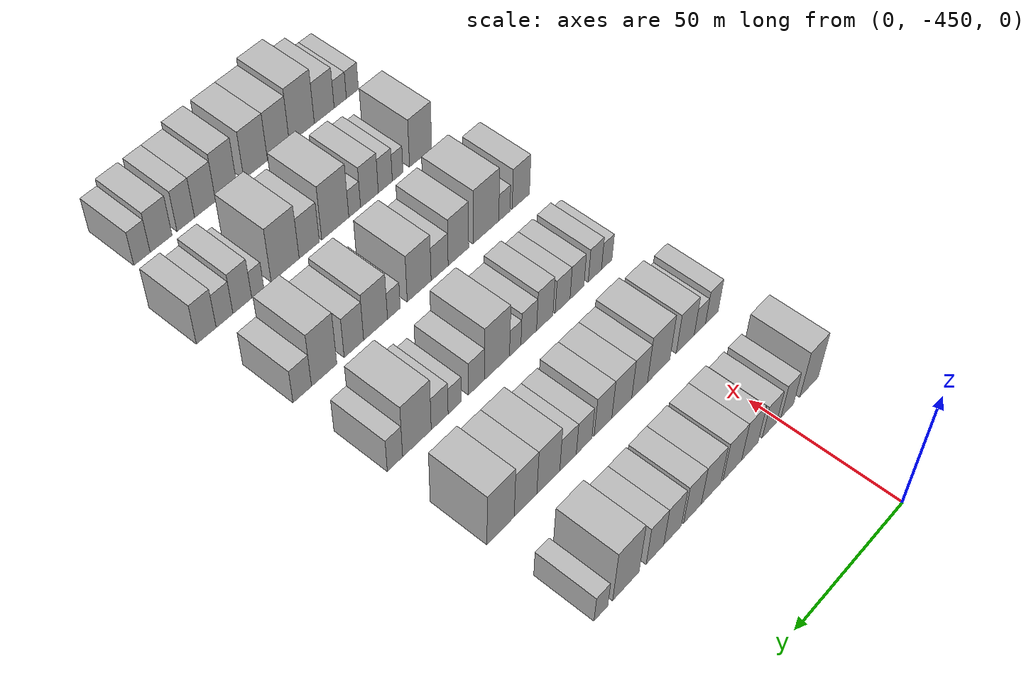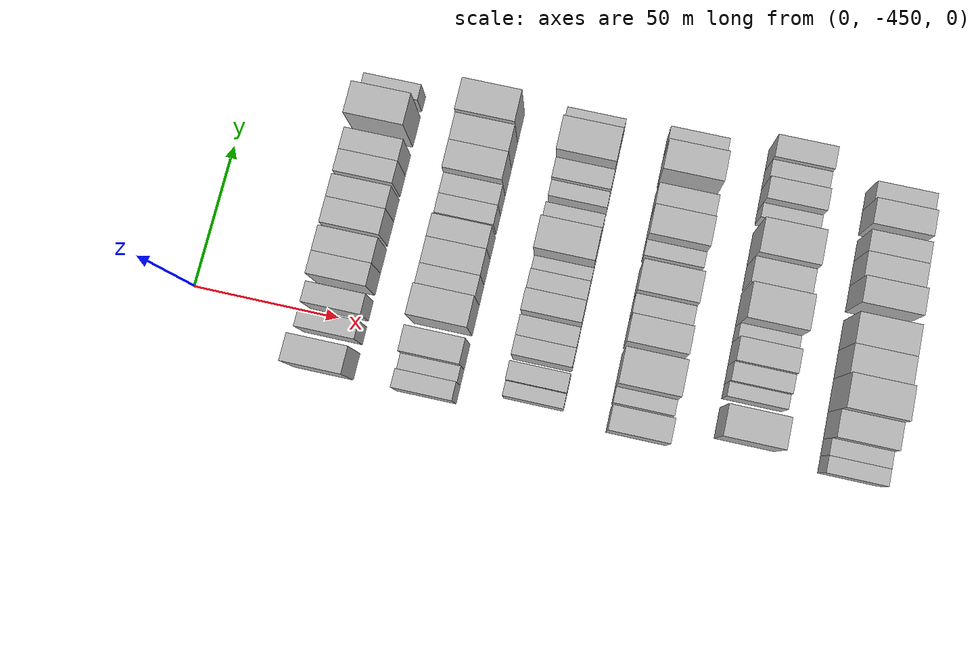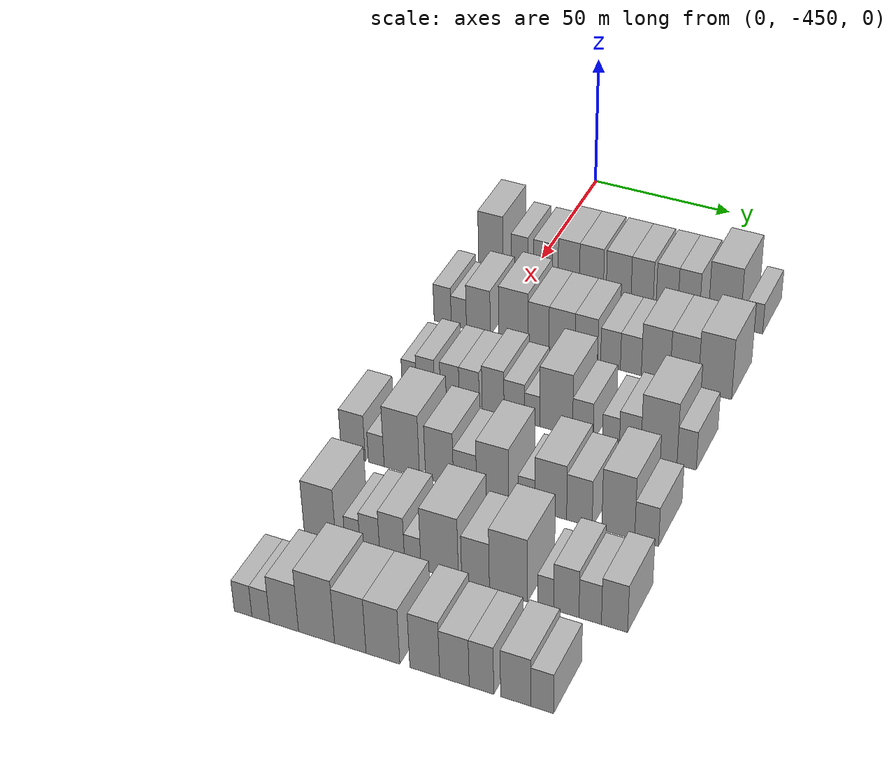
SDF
<sdf version="1.6">
 <world name="default">
  <model name="building_13">
   <static>1</static>
   <pose>50.0000 -464.6407 0 0.000000 0.000000 0.000000</pose>
   <link name="link">
    <pose>0 0 10.50 0 0 0</pose>
    <collision name="collision"><geometry><box><size>20.0000 9.0108 21.0000</size></box></geometry></collision>
    <visual name="visual">
     <cast_shadows>0</cast_shadows>
     <geometry><box><size>20.0000 9.0108 21.0000</size></box></geometry>
     <material>
      <script>
       <uri>model://HANNAS_wall/materials/scripts</uri>
       <uri>model://HANNAS_wall/materials/textures</uri>
       <name>vrc/HANNAS_wall</name>
      </script>
     </material>
    </visual>
   </link>
  </model>
  <model name="building_14">
   <static>1</static>
   <pose>50.0000 -454.0856 0 0.000000 0.000000 0.000000</pose>
   <link name="link">
    <pose>0 0 7.50 0 0 0</pose>
    <collision name="collision"><geometry><box><size>20.0000 6.0993 15.0000</size></box></geometry></collision>
    <visual name="visual">
     <cast_shadows>0</cast_shadows>
     <geometry><box><size>20.0000 6.0993 15.0000</size></box></geometry>
     <material>
      <script>
       <uri>model://HANNAS_wall/materials/scripts</uri>
       <uri>model://HANNAS_wall/materials/textures</uri>
       <name>vrc/HANNAS_wall</name>
      </script>
     </material>
    </visual>
   </link>
  </model>
  <model name="building_15">
   <static>1</static>
   <pose>50.0000 -445.5829 0 0.000000 0.000000 0.000000</pose>
   <link name="link">
    <pose>0 0 7.50 0 0 0</pose>
    <collision name="collision"><geometry><box><size>20.0000 6.9061 15.0000</size></box></geometry></collision>
    <visual name="visual">
     <cast_shadows>0</cast_shadows>
     <geometry><box><size>20.0000 6.9061 15.0000</size></box></geometry>
     <material>
      <script>
       <uri>model://HANNAS_wall/materials/scripts</uri>
       <uri>model://HANNAS_wall/materials/textures</uri>
       <name>vrc/HANNAS_wall</name>
      </script>
     </material>
    </visual>
   </link>
  </model>
  <model name="building_16">
   <static>1</static>
   <pose>50.0000 -436.2913 0 0.000000 0.000000 0.000000</pose>
   <link name="link">
    <pose>0 0 9.00 0 0 0</pose>
    <collision name="collision"><geometry><box><size>20.0000 7.6771 18.0000</size></box></geometry></collision>
    <visual name="visual">
     <cast_shadows>0</cast_shadows>
     <geometry><box><size>20.0000 7.6771 18.0000</size></box></geometry>
     <material>
      <script>
       <uri>model://HANNAS_wall/materials/scripts</uri>
       <uri>model://HANNAS_wall/materials/textures</uri>
       <name>vrc/HANNAS_wall</name>
      </script>
     </material>
    </visual>
   </link>
  </model>
  <model name="building_17">
   <static>1</static>
   <pose>50.0000 -428.1768 0 0.000000 0.000000 0.000000</pose>
   <link name="link">
    <pose>0 0 9.00 0 0 0</pose>
    <collision name="collision"><geometry><box><size>20.0000 8.5519 18.0000</size></box></geometry></collision>
    <visual name="visual">
     <cast_shadows>0</cast_shadows>
     <geometry><box><size>20.0000 8.5519 18.0000</size></box></geometry>
     <material>
      <script>
       <uri>model://HANNAS_wall/materials/scripts</uri>
       <uri>model://HANNAS_wall/materials/textures</uri>
       <name>vrc/HANNAS_wall</name>
      </script>
     </material>
    </visual>
   </link>
  </model>
  <model name="building_18">
   <static>1</static>
   <pose>50.0000 -418.5068 0 0.000000 0.000000 0.000000</pose>
   <link name="link">
    <pose>0 0 9.00 0 0 0</pose>
    <collision name="collision"><geometry><box><size>20.0000 8.7880 18.0000</size></box></geometry></collision>
    <visual name="visual">
     <cast_shadows>0</cast_shadows>
     <geometry><box><size>20.0000 8.7880 18.0000</size></box></geometry>
     <material>
      <script>
       <uri>model://HANNAS_wall/materials/scripts</uri>
       <uri>model://HANNAS_wall/materials/textures</uri>
       <name>vrc/HANNAS_wall</name>
      </script>
     </material>
    </visual>
   </link>
  </model>
  <model name="building_19">
   <static>1</static>
   <pose>50.0000 -410.2120 0 0.000000 0.000000 0.000000</pose>
   <link name="link">
    <pose>0 0 9.00 0 0 0</pose>
    <collision name="collision"><geometry><box><size>20.0000 7.8017 18.0000</size></box></geometry></collision>
    <visual name="visual">
     <cast_shadows>0</cast_shadows>
     <geometry><box><size>20.0000 7.8017 18.0000</size></box></geometry>
     <material>
      <script>
       <uri>model://HANNAS_wall/materials/scripts</uri>
       <uri>model://HANNAS_wall/materials/textures</uri>
       <name>vrc/HANNAS_wall</name>
      </script>
     </material>
    </visual>
   </link>
  </model>
  <model name="building_20">
   <static>1</static>
   <pose>50.0000 -401.4914 0 0.000000 0.000000 0.000000</pose>
   <link name="link">
    <pose>0 0 9.00 0 0 0</pose>
    <collision name="collision"><geometry><box><size>20.0000 7.6396 18.0000</size></box></geometry></collision>
    <visual name="visual">
     <cast_shadows>0</cast_shadows>
     <geometry><box><size>20.0000 7.6396 18.0000</size></box></geometry>
     <material>
      <script>
       <uri>model://HANNAS_wall/materials/scripts</uri>
       <uri>model://HANNAS_wall/materials/textures</uri>
       <name>vrc/HANNAS_wall</name>
      </script>
     </material>
    </visual>
   </link>
  </model>
  <model name="building_21">
   <static>1</static>
   <pose>50.0000 -393.9157 0 0.000000 0.000000 0.000000</pose>
   <link name="link">
    <pose>0 0 9.00 0 0 0</pose>
    <collision name="collision"><geometry><box><size>20.0000 7.5118 18.0000</size></box></geometry></collision>
    <visual name="visual">
     <cast_shadows>0</cast_shadows>
     <geometry><box><size>20.0000 7.5118 18.0000</size></box></geometry>
     <material>
      <script>
       <uri>model://HANNAS_wall/materials/scripts</uri>
       <uri>model://HANNAS_wall/materials/textures</uri>
       <name>vrc/HANNAS_wall</name>
      </script>
     </material>
    </visual>
   </link>
  </model>
  <model name="building_22">
   <static>1</static>
   <pose>50.0000 -381.6460 0 0.000000 0.000000 0.000000</pose>
   <link name="link">
    <pose>0 0 12.00 0 0 0</pose>
    <collision name="collision"><geometry><box><size>20.0000 11.0276 24.0000</size></box></geometry></collision>
    <visual name="visual">
     <cast_shadows>0</cast_shadows>
     <geometry><box><size>20.0000 11.0276 24.0000</size></box></geometry>
     <material>
      <script>
       <uri>model://HANNAS_wall/materials/scripts</uri>
       <uri>model://HANNAS_wall/materials/textures</uri>
       <name>vrc/HANNAS_wall</name>
      </script>
     </material>
    </visual>
   </link>
  </model>
  <model name="building_23">
   <static>1</static>
   <pose>50.0000 -371.3192 0 0.000000 0.000000 0.000000</pose>
   <link name="link">
    <pose>0 0 6.00 0 0 0</pose>
    <collision name="collision"><geometry><box><size>20.0000 5.6260 12.0000</size></box></geometry></collision>
    <visual name="visual">
     <cast_shadows>0</cast_shadows>
     <geometry><box><size>20.0000 5.6260 12.0000</size></box></geometry>
     <material>
      <script>
       <uri>model://HANNAS_wall/materials/scripts</uri>
       <uri>model://HANNAS_wall/materials/textures</uri>
       <name>vrc/HANNAS_wall</name>
      </script>
     </material>
    </visual>
   </link>
  </model>
  <model name="building_141">
   <static>1</static>
   <pose>85.0000 -466.4260 0 0.000000 0.000000 0.000000</pose>
   <link name="link">
    <pose>0 0 7.50 0 0 0</pose>
    <collision name="collision"><geometry><box><size>20.0000 6.1552 15.0000</size></box></geometry></collision>
    <visual name="visual">
     <cast_shadows>0</cast_shadows>
     <geometry><box><size>20.0000 6.1552 15.0000</size></box></geometry>
     <material>
      <script>
       <uri>model://HANNAS_wall/materials/scripts</uri>
       <uri>model://HANNAS_wall/materials/textures</uri>
       <name>vrc/HANNAS_wall</name>
      </script>
     </material>
    </visual>
   </link>
  </model>
  <model name="building_142">
   <static>1</static>
   <pose>85.0000 -460.6485 0 0.000000 0.000000 0.000000</pose>
   <link name="link">
    <pose>0 0 6.00 0 0 0</pose>
    <collision name="collision"><geometry><box><size>20.0000 5.3996 12.0000</size></box></geometry></collision>
    <visual name="visual">
     <cast_shadows>0</cast_shadows>
     <geometry><box><size>20.0000 5.3996 12.0000</size></box></geometry>
     <material>
      <script>
       <uri>model://HANNAS_wall/materials/scripts</uri>
       <uri>model://HANNAS_wall/materials/textures</uri>
       <name>vrc/HANNAS_wall</name>
      </script>
     </material>
    </visual>
   </link>
  </model>
  <model name="building_143">
   <static>1</static>
   <pose>85.0000 -453.7010 0 0.000000 0.000000 0.000000</pose>
   <link name="link">
    <pose>0 0 9.00 0 0 0</pose>
    <collision name="collision"><geometry><box><size>20.0000 8.4955 18.0000</size></box></geometry></collision>
    <visual name="visual">
     <cast_shadows>0</cast_shadows>
     <geometry><box><size>20.0000 8.4955 18.0000</size></box></geometry>
     <material>
      <script>
       <uri>model://HANNAS_wall/materials/scripts</uri>
       <uri>model://HANNAS_wall/materials/textures</uri>
       <name>vrc/HANNAS_wall</name>
      </script>
     </material>
    </visual>
   </link>
  </model>
  <model name="building_144">
   <static>1</static>
   <pose>85.0000 -441.2872 0 0.000000 0.000000 0.000000</pose>
   <link name="link">
    <pose>0 0 10.50 0 0 0</pose>
    <collision name="collision"><geometry><box><size>20.0000 10.3321 21.0000</size></box></geometry></collision>
    <visual name="visual">
     <cast_shadows>0</cast_shadows>
     <geometry><box><size>20.0000 10.3321 21.0000</size></box></geometry>
     <material>
      <script>
       <uri>model://HANNAS_wall/materials/scripts</uri>
       <uri>model://HANNAS_wall/materials/textures</uri>
       <name>vrc/HANNAS_wall</name>
      </script>
     </material>
    </visual>
   </link>
  </model>
  <model name="building_145">
   <static>1</static>
   <pose>85.0000 -432.5158 0 0.000000 0.000000 0.000000</pose>
   <link name="link">
    <pose>0 0 9.00 0 0 0</pose>
    <collision name="collision"><geometry><box><size>20.0000 7.2106 18.0000</size></box></geometry></collision>
    <visual name="visual">
     <cast_shadows>0</cast_shadows>
     <geometry><box><size>20.0000 7.2106 18.0000</size></box></geometry>
     <material>
      <script>
       <uri>model://HANNAS_wall/materials/scripts</uri>
       <uri>model://HANNAS_wall/materials/textures</uri>
       <name>vrc/HANNAS_wall</name>
      </script>
     </material>
    </visual>
   </link>
  </model>
  <model name="building_146">
   <static>1</static>
   <pose>85.0000 -424.4501 0 0.000000 0.000000 0.000000</pose>
   <link name="link">
    <pose>0 0 9.00 0 0 0</pose>
    <collision name="collision"><geometry><box><size>20.0000 8.9210 18.0000</size></box></geometry></collision>
    <visual name="visual">
     <cast_shadows>0</cast_shadows>
     <geometry><box><size>20.0000 8.9210 18.0000</size></box></geometry>
     <material>
      <script>
       <uri>model://HANNAS_wall/materials/scripts</uri>
       <uri>model://HANNAS_wall/materials/textures</uri>
       <name>vrc/HANNAS_wall</name>
      </script>
     </material>
    </visual>
   </link>
  </model>
  <model name="building_147">
   <static>1</static>
   <pose>85.0000 -416.0861 0 0.000000 0.000000 0.000000</pose>
   <link name="link">
    <pose>0 0 9.00 0 0 0</pose>
    <collision name="collision"><geometry><box><size>20.0000 7.8068 18.0000</size></box></geometry></collision>
    <visual name="visual">
     <cast_shadows>0</cast_shadows>
     <geometry><box><size>20.0000 7.8068 18.0000</size></box></geometry>
     <material>
      <script>
       <uri>model://HANNAS_wall/materials/scripts</uri>
       <uri>model://HANNAS_wall/materials/textures</uri>
       <name>vrc/HANNAS_wall</name>
      </script>
     </material>
    </visual>
   </link>
  </model>
  <model name="building_148">
   <static>1</static>
   <pose>85.0000 -407.8089 0 0.000000 0.000000 0.000000</pose>
   <link name="link">
    <pose>0 0 7.50 0 0 0</pose>
    <collision name="collision"><geometry><box><size>20.0000 6.7477 15.0000</size></box></geometry></collision>
    <visual name="visual">
     <cast_shadows>0</cast_shadows>
     <geometry><box><size>20.0000 6.7477 15.0000</size></box></geometry>
     <material>
      <script>
       <uri>model://HANNAS_wall/materials/scripts</uri>
       <uri>model://HANNAS_wall/materials/textures</uri>
       <name>vrc/HANNAS_wall</name>
      </script>
     </material>
    </visual>
   </link>
  </model>
  <model name="building_149">
   <static>1</static>
   <pose>85.0000 -400.8885 0 0.000000 0.000000 0.000000</pose>
   <link name="link">
    <pose>0 0 7.50 0 0 0</pose>
    <collision name="collision"><geometry><box><size>20.0000 7.0931 15.0000</size></box></geometry></collision>
    <visual name="visual">
     <cast_shadows>0</cast_shadows>
     <geometry><box><size>20.0000 7.0931 15.0000</size></box></geometry>
     <material>
      <script>
       <uri>model://HANNAS_wall/materials/scripts</uri>
       <uri>model://HANNAS_wall/materials/textures</uri>
       <name>vrc/HANNAS_wall</name>
      </script>
     </material>
    </visual>
   </link>
  </model>
  <model name="building_150">
   <static>1</static>
   <pose>85.0000 -392.5144 0 0.000000 0.000000 0.000000</pose>
   <link name="link">
    <pose>0 0 10.50 0 0 0</pose>
    <collision name="collision"><geometry><box><size>20.0000 9.6550 21.0000</size></box></geometry></collision>
    <visual name="visual">
     <cast_shadows>0</cast_shadows>
     <geometry><box><size>20.0000 9.6550 21.0000</size></box></geometry>
     <material>
      <script>
       <uri>model://HANNAS_wall/materials/scripts</uri>
       <uri>model://HANNAS_wall/materials/textures</uri>
       <name>vrc/HANNAS_wall</name>
      </script>
     </material>
    </visual>
   </link>
  </model>
  <model name="building_151">
   <static>1</static>
   <pose>85.0000 -383.0103 0 0.000000 0.000000 0.000000</pose>
   <link name="link">
    <pose>0 0 10.50 0 0 0</pose>
    <collision name="collision"><geometry><box><size>20.0000 9.3533 21.0000</size></box></geometry></collision>
    <visual name="visual">
     <cast_shadows>0</cast_shadows>
     <geometry><box><size>20.0000 9.3533 21.0000</size></box></geometry>
     <material>
      <script>
       <uri>model://HANNAS_wall/materials/scripts</uri>
       <uri>model://HANNAS_wall/materials/textures</uri>
       <name>vrc/HANNAS_wall</name>
      </script>
     </material>
    </visual>
   </link>
  </model>
  <model name="building_152">
   <static>1</static>
   <pose>85.0000 -372.8003 0 0.000000 0.000000 0.000000</pose>
   <link name="link">
    <pose>0 0 12.00 0 0 0</pose>
    <collision name="collision"><geometry><box><size>20.0000 11.0667 24.0000</size></box></geometry></collision>
    <visual name="visual">
     <cast_shadows>0</cast_shadows>
     <geometry><box><size>20.0000 11.0667 24.0000</size></box></geometry>
     <material>
      <script>
       <uri>model://HANNAS_wall/materials/scripts</uri>
       <uri>model://HANNAS_wall/materials/textures</uri>
       <name>vrc/HANNAS_wall</name>
      </script>
     </material>
    </visual>
   </link>
  </model>
  <model name="building_268">
   <static>1</static>
   <pose>120.0000 -461.7917 0 0.000000 0.000000 0.000000</pose>
   <link name="link">
    <pose>0 0 6.00 0 0 0</pose>
    <collision name="collision"><geometry><box><size>20.0000 4.9684 12.0000</size></box></geometry></collision>
    <visual name="visual">
     <cast_shadows>0</cast_shadows>
     <geometry><box><size>20.0000 4.9684 12.0000</size></box></geometry>
     <material>
      <script>
       <uri>model://HANNAS_wall/materials/scripts</uri>
       <uri>model://HANNAS_wall/materials/textures</uri>
       <name>vrc/HANNAS_wall</name>
      </script>
     </material>
    </visual>
   </link>
  </model>
  <model name="building_269">
   <static>1</static>
   <pose>120.0000 -456.1855 0 0.000000 0.000000 0.000000</pose>
   <link name="link">
    <pose>0 0 7.50 0 0 0</pose>
    <collision name="collision"><geometry><box><size>20.0000 6.2441 15.0000</size></box></geometry></collision>
    <visual name="visual">
     <cast_shadows>0</cast_shadows>
     <geometry><box><size>20.0000 6.2441 15.0000</size></box></geometry>
     <material>
      <script>
       <uri>model://HANNAS_wall/materials/scripts</uri>
       <uri>model://HANNAS_wall/materials/textures</uri>
       <name>vrc/HANNAS_wall</name>
      </script>
     </material>
    </visual>
   </link>
  </model>
  <model name="building_270">
   <static>1</static>
   <pose>120.0000 -447.8540 0 0.000000 0.000000 0.000000</pose>
   <link name="link">
    <pose>0 0 7.50 0 0 0</pose>
    <collision name="collision"><geometry><box><size>20.0000 6.4188 15.0000</size></box></geometry></collision>
    <visual name="visual">
     <cast_shadows>0</cast_shadows>
     <geometry><box><size>20.0000 6.4188 15.0000</size></box></geometry>
     <material>
      <script>
       <uri>model://HANNAS_wall/materials/scripts</uri>
       <uri>model://HANNAS_wall/materials/textures</uri>
       <name>vrc/HANNAS_wall</name>
      </script>
     </material>
    </visual>
   </link>
  </model>
  <model name="building_271">
   <static>1</static>
   <pose>120.0000 -441.2460 0 0.000000 0.000000 0.000000</pose>
   <link name="link">
    <pose>0 0 7.50 0 0 0</pose>
    <collision name="collision"><geometry><box><size>20.0000 6.7972 15.0000</size></box></geometry></collision>
    <visual name="visual">
     <cast_shadows>0</cast_shadows>
     <geometry><box><size>20.0000 6.7972 15.0000</size></box></geometry>
     <material>
      <script>
       <uri>model://HANNAS_wall/materials/scripts</uri>
       <uri>model://HANNAS_wall/materials/textures</uri>
       <name>vrc/HANNAS_wall</name>
      </script>
     </material>
    </visual>
   </link>
  </model>
  <model name="building_272">
   <static>1</static>
   <pose>120.0000 -433.1533 0 0.000000 0.000000 0.000000</pose>
   <link name="link">
    <pose>0 0 9.00 0 0 0</pose>
    <collision name="collision"><geometry><box><size>20.0000 7.3883 18.0000</size></box></geometry></collision>
    <visual name="visual">
     <cast_shadows>0</cast_shadows>
     <geometry><box><size>20.0000 7.3883 18.0000</size></box></geometry>
     <material>
      <script>
       <uri>model://HANNAS_wall/materials/scripts</uri>
       <uri>model://HANNAS_wall/materials/textures</uri>
       <name>vrc/HANNAS_wall</name>
      </script>
     </material>
    </visual>
   </link>
  </model>
  <model name="building_273">
   <static>1</static>
   <pose>120.0000 -425.9911 0 0.000000 0.000000 0.000000</pose>
   <link name="link">
    <pose>0 0 7.50 0 0 0</pose>
    <collision name="collision"><geometry><box><size>20.0000 6.9361 15.0000</size></box></geometry></collision>
    <visual name="visual">
     <cast_shadows>0</cast_shadows>
     <geometry><box><size>20.0000 6.9361 15.0000</size></box></geometry>
     <material>
      <script>
       <uri>model://HANNAS_wall/materials/scripts</uri>
       <uri>model://HANNAS_wall/materials/textures</uri>
       <name>vrc/HANNAS_wall</name>
      </script>
     </material>
    </visual>
   </link>
  </model>
  <model name="building_274">
   <static>1</static>
   <pose>120.0000 -420.0111 0 0.000000 0.000000 0.000000</pose>
   <link name="link">
    <pose>0 0 6.00 0 0 0</pose>
    <collision name="collision"><geometry><box><size>20.0000 5.0239 12.0000</size></box></geometry></collision>
    <visual name="visual">
     <cast_shadows>0</cast_shadows>
     <geometry><box><size>20.0000 5.0239 12.0000</size></box></geometry>
     <material>
      <script>
       <uri>model://HANNAS_wall/materials/scripts</uri>
       <uri>model://HANNAS_wall/materials/textures</uri>
       <name>vrc/HANNAS_wall</name>
      </script>
     </material>
    </visual>
   </link>
  </model>
  <model name="building_275">
   <static>1</static>
   <pose>120.0000 -412.0723 0 0.000000 0.000000 0.000000</pose>
   <link name="link">
    <pose>0 0 12.00 0 0 0</pose>
    <collision name="collision"><geometry><box><size>20.0000 10.8537 24.0000</size></box></geometry></collision>
    <visual name="visual">
     <cast_shadows>0</cast_shadows>
     <geometry><box><size>20.0000 10.8537 24.0000</size></box></geometry>
     <material>
      <script>
       <uri>model://HANNAS_wall/materials/scripts</uri>
       <uri>model://HANNAS_wall/materials/textures</uri>
       <name>vrc/HANNAS_wall</name>
      </script>
     </material>
    </visual>
   </link>
  </model>
  <model name="building_276">
   <static>1</static>
   <pose>120.0000 -403.2533 0 0.000000 0.000000 0.000000</pose>
   <link name="link">
    <pose>0 0 7.50 0 0 0</pose>
    <collision name="collision"><geometry><box><size>20.0000 6.7842 15.0000</size></box></geometry></collision>
    <visual name="visual">
     <cast_shadows>0</cast_shadows>
     <geometry><box><size>20.0000 6.7842 15.0000</size></box></geometry>
     <material>
      <script>
       <uri>model://HANNAS_wall/materials/scripts</uri>
       <uri>model://HANNAS_wall/materials/textures</uri>
       <name>vrc/HANNAS_wall</name>
      </script>
     </material>
    </visual>
   </link>
  </model>
  <model name="building_277">
   <static>1</static>
   <pose>120.0000 -394.0921 0 0.000000 0.000000 0.000000</pose>
   <link name="link">
    <pose>0 0 6.00 0 0 0</pose>
    <collision name="collision"><geometry><box><size>20.0000 5.5382 12.0000</size></box></geometry></collision>
    <visual name="visual">
     <cast_shadows>0</cast_shadows>
     <geometry><box><size>20.0000 5.5382 12.0000</size></box></geometry>
     <material>
      <script>
       <uri>model://HANNAS_wall/materials/scripts</uri>
       <uri>model://HANNAS_wall/materials/textures</uri>
       <name>vrc/HANNAS_wall</name>
      </script>
     </material>
    </visual>
   </link>
  </model>
  <model name="building_278">
   <static>1</static>
   <pose>120.0000 -387.8358 0 0.000000 0.000000 0.000000</pose>
   <link name="link">
    <pose>0 0 7.50 0 0 0</pose>
    <collision name="collision"><geometry><box><size>20.0000 6.9743 15.0000</size></box></geometry></collision>
    <visual name="visual">
     <cast_shadows>0</cast_shadows>
     <geometry><box><size>20.0000 6.9743 15.0000</size></box></geometry>
     <material>
      <script>
       <uri>model://HANNAS_wall/materials/scripts</uri>
       <uri>model://HANNAS_wall/materials/textures</uri>
       <name>vrc/HANNAS_wall</name>
      </script>
     </material>
    </visual>
   </link>
  </model>
  <model name="building_279">
   <static>1</static>
   <pose>120.0000 -378.5431 0 0.000000 0.000000 0.000000</pose>
   <link name="link">
    <pose>0 0 12.00 0 0 0</pose>
    <collision name="collision"><geometry><box><size>20.0000 11.6112 24.0000</size></box></geometry></collision>
    <visual name="visual">
     <cast_shadows>0</cast_shadows>
     <geometry><box><size>20.0000 11.6112 24.0000</size></box></geometry>
     <material>
      <script>
       <uri>model://HANNAS_wall/materials/scripts</uri>
       <uri>model://HANNAS_wall/materials/textures</uri>
       <name>vrc/HANNAS_wall</name>
      </script>
     </material>
    </visual>
   </link>
  </model>
  <model name="building_280">
   <static>1</static>
   <pose>120.0000 -369.6702 0 0.000000 0.000000 0.000000</pose>
   <link name="link">
    <pose>0 0 7.50 0 0 0</pose>
    <collision name="collision"><geometry><box><size>20.0000 6.1345 15.0000</size></box></geometry></collision>
    <visual name="visual">
     <cast_shadows>0</cast_shadows>
     <geometry><box><size>20.0000 6.1345 15.0000</size></box></geometry>
     <material>
      <script>
       <uri>model://HANNAS_wall/materials/scripts</uri>
       <uri>model://HANNAS_wall/materials/textures</uri>
       <name>vrc/HANNAS_wall</name>
      </script>
     </material>
    </visual>
   </link>
  </model>
  <model name="building_394">
   <static>1</static>
   <pose>155.0000 -463.9140 0 0.000000 0.000000 0.000000</pose>
   <link name="link">
    <pose>0 0 9.00 0 0 0</pose>
    <collision name="collision"><geometry><box><size>20.0000 8.1123 18.0000</size></box></geometry></collision>
    <visual name="visual">
     <cast_shadows>0</cast_shadows>
     <geometry><box><size>20.0000 8.1123 18.0000</size></box></geometry>
     <material>
      <script>
       <uri>model://HANNAS_wall/materials/scripts</uri>
       <uri>model://HANNAS_wall/materials/textures</uri>
       <name>vrc/HANNAS_wall</name>
      </script>
     </material>
    </visual>
   </link>
  </model>
  <model name="building_395">
   <static>1</static>
   <pose>155.0000 -456.2298 0 0.000000 0.000000 0.000000</pose>
   <link name="link">
    <pose>0 0 6.00 0 0 0</pose>
    <collision name="collision"><geometry><box><size>20.0000 5.2563 12.0000</size></box></geometry></collision>
    <visual name="visual">
     <cast_shadows>0</cast_shadows>
     <geometry><box><size>20.0000 5.2563 12.0000</size></box></geometry>
     <material>
      <script>
       <uri>model://HANNAS_wall/materials/scripts</uri>
       <uri>model://HANNAS_wall/materials/textures</uri>
       <name>vrc/HANNAS_wall</name>
      </script>
     </material>
    </visual>
   </link>
  </model>
  <model name="building_396">
   <static>1</static>
   <pose>155.0000 -447.7256 0 0.000000 0.000000 0.000000</pose>
   <link name="link">
    <pose>0 0 12.00 0 0 0</pose>
    <collision name="collision"><geometry><box><size>20.0000 11.7521 24.0000</size></box></geometry></collision>
    <visual name="visual">
     <cast_shadows>0</cast_shadows>
     <geometry><box><size>20.0000 11.7521 24.0000</size></box></geometry>
     <material>
      <script>
       <uri>model://HANNAS_wall/materials/scripts</uri>
       <uri>model://HANNAS_wall/materials/textures</uri>
       <name>vrc/HANNAS_wall</name>
      </script>
     </material>
    </visual>
   </link>
  </model>
  <model name="building_397">
   <static>1</static>
   <pose>155.0000 -435.2568 0 0.000000 0.000000 0.000000</pose>
   <link name="link">
    <pose>0 0 10.50 0 0 0</pose>
    <collision name="collision"><geometry><box><size>20.0000 9.1855 21.0000</size></box></geometry></collision>
    <visual name="visual">
     <cast_shadows>0</cast_shadows>
     <geometry><box><size>20.0000 9.1855 21.0000</size></box></geometry>
     <material>
      <script>
       <uri>model://HANNAS_wall/materials/scripts</uri>
       <uri>model://HANNAS_wall/materials/textures</uri>
       <name>vrc/HANNAS_wall</name>
      </script>
     </material>
    </visual>
   </link>
  </model>
  <model name="building_398">
   <static>1</static>
   <pose>155.0000 -426.9173 0 0.000000 0.000000 0.000000</pose>
   <link name="link">
    <pose>0 0 7.50 0 0 0</pose>
    <collision name="collision"><geometry><box><size>20.0000 7.4936 15.0000</size></box></geometry></collision>
    <visual name="visual">
     <cast_shadows>0</cast_shadows>
     <geometry><box><size>20.0000 7.4936 15.0000</size></box></geometry>
     <material>
      <script>
       <uri>model://HANNAS_wall/materials/scripts</uri>
       <uri>model://HANNAS_wall/materials/textures</uri>
       <name>vrc/HANNAS_wall</name>
      </script>
     </material>
    </visual>
   </link>
  </model>
  <model name="building_399">
   <static>1</static>
   <pose>155.0000 -417.9808 0 0.000000 0.000000 0.000000</pose>
   <link name="link">
    <pose>0 0 10.50 0 0 0</pose>
    <collision name="collision"><geometry><box><size>20.0000 10.3794 21.0000</size></box></geometry></collision>
    <visual name="visual">
     <cast_shadows>0</cast_shadows>
     <geometry><box><size>20.0000 10.3794 21.0000</size></box></geometry>
     <material>
      <script>
       <uri>model://HANNAS_wall/materials/scripts</uri>
       <uri>model://HANNAS_wall/materials/textures</uri>
       <name>vrc/HANNAS_wall</name>
      </script>
     </material>
    </visual>
   </link>
  </model>
  <model name="building_400">
   <static>1</static>
   <pose>155.0000 -407.0880 0 0.000000 0.000000 0.000000</pose>
   <link name="link">
    <pose>0 0 6.00 0 0 0</pose>
    <collision name="collision"><geometry><box><size>20.0000 5.4062 12.0000</size></box></geometry></collision>
    <visual name="visual">
     <cast_shadows>0</cast_shadows>
     <geometry><box><size>20.0000 5.4062 12.0000</size></box></geometry>
     <material>
      <script>
       <uri>model://HANNAS_wall/materials/scripts</uri>
       <uri>model://HANNAS_wall/materials/textures</uri>
       <name>vrc/HANNAS_wall</name>
      </script>
     </material>
    </visual>
   </link>
  </model>
  <model name="building_401">
   <static>1</static>
   <pose>155.0000 -399.3849 0 0.000000 0.000000 0.000000</pose>
   <link name="link">
    <pose>0 0 10.50 0 0 0</pose>
    <collision name="collision"><geometry><box><size>20.0000 10.0000 21.0000</size></box></geometry></collision>
    <visual name="visual">
     <cast_shadows>0</cast_shadows>
     <geometry><box><size>20.0000 10.0000 21.0000</size></box></geometry>
     <material>
      <script>
       <uri>model://HANNAS_wall/materials/scripts</uri>
       <uri>model://HANNAS_wall/materials/textures</uri>
       <name>vrc/HANNAS_wall</name>
      </script>
     </material>
    </visual>
   </link>
  </model>
  <model name="building_402">
   <static>1</static>
   <pose>155.0000 -390.3670 0 0.000000 0.000000 0.000000</pose>
   <link name="link">
    <pose>0 0 9.00 0 0 0</pose>
    <collision name="collision"><geometry><box><size>20.0000 8.0358 18.0000</size></box></geometry></collision>
    <visual name="visual">
     <cast_shadows>0</cast_shadows>
     <geometry><box><size>20.0000 8.0358 18.0000</size></box></geometry>
     <material>
      <script>
       <uri>model://HANNAS_wall/materials/scripts</uri>
       <uri>model://HANNAS_wall/materials/textures</uri>
       <name>vrc/HANNAS_wall</name>
      </script>
     </material>
    </visual>
   </link>
  </model>
  <model name="building_403">
   <static>1</static>
   <pose>155.0000 -378.2400 0 0.000000 0.000000 0.000000</pose>
   <link name="link">
    <pose>0 0 12.00 0 0 0</pose>
    <collision name="collision"><geometry><box><size>20.0000 10.2182 24.0000</size></box></geometry></collision>
    <visual name="visual">
     <cast_shadows>0</cast_shadows>
     <geometry><box><size>20.0000 10.2182 24.0000</size></box></geometry>
     <material>
      <script>
       <uri>model://HANNAS_wall/materials/scripts</uri>
       <uri>model://HANNAS_wall/materials/textures</uri>
       <name>vrc/HANNAS_wall</name>
      </script>
     </material>
    </visual>
   </link>
  </model>
  <model name="building_404">
   <static>1</static>
   <pose>155.0000 -369.4482 0 0.000000 0.000000 0.000000</pose>
   <link name="link">
    <pose>0 0 7.50 0 0 0</pose>
    <collision name="collision"><geometry><box><size>20.0000 7.3654 15.0000</size></box></geometry></collision>
    <visual name="visual">
     <cast_shadows>0</cast_shadows>
     <geometry><box><size>20.0000 7.3654 15.0000</size></box></geometry>
     <material>
      <script>
       <uri>model://HANNAS_wall/materials/scripts</uri>
       <uri>model://HANNAS_wall/materials/textures</uri>
       <name>vrc/HANNAS_wall</name>
      </script>
     </material>
    </visual>
   </link>
  </model>
  <model name="building_522">
   <static>1</static>
   <pose>190.0000 -457.1783 0 0.000000 0.000000 0.000000</pose>
   <link name="link">
    <pose>0 0 10.50 0 0 0</pose>
    <collision name="collision"><geometry><box><size>20.0000 10.2211 21.0000</size></box></geometry></collision>
    <visual name="visual">
     <cast_shadows>0</cast_shadows>
     <geometry><box><size>20.0000 10.2211 21.0000</size></box></geometry>
     <material>
      <script>
       <uri>model://HANNAS_wall/materials/scripts</uri>
       <uri>model://HANNAS_wall/materials/textures</uri>
       <name>vrc/HANNAS_wall</name>
      </script>
     </material>
    </visual>
   </link>
  </model>
  <model name="building_523">
   <static>1</static>
   <pose>190.0000 -446.6485 0 0.000000 0.000000 0.000000</pose>
   <link name="link">
    <pose>0 0 6.00 0 0 0</pose>
    <collision name="collision"><geometry><box><size>20.0000 4.8385 12.0000</size></box></geometry></collision>
    <visual name="visual">
     <cast_shadows>0</cast_shadows>
     <geometry><box><size>20.0000 4.8385 12.0000</size></box></geometry>
     <material>
      <script>
       <uri>model://HANNAS_wall/materials/scripts</uri>
       <uri>model://HANNAS_wall/materials/textures</uri>
       <name>vrc/HANNAS_wall</name>
      </script>
     </material>
    </visual>
   </link>
  </model>
  <model name="building_524">
   <static>1</static>
   <pose>190.0000 -441.0878 0 0.000000 0.000000 0.000000</pose>
   <link name="link">
    <pose>0 0 7.50 0 0 0</pose>
    <collision name="collision"><geometry><box><size>20.0000 6.2829 15.0000</size></box></geometry></collision>
    <visual name="visual">
     <cast_shadows>0</cast_shadows>
     <geometry><box><size>20.0000 6.2829 15.0000</size></box></geometry>
     <material>
      <script>
       <uri>model://HANNAS_wall/materials/scripts</uri>
       <uri>model://HANNAS_wall/materials/textures</uri>
       <name>vrc/HANNAS_wall</name>
      </script>
     </material>
    </visual>
   </link>
  </model>
  <model name="building_525">
   <static>1</static>
   <pose>190.0000 -434.0104 0 0.000000 0.000000 0.000000</pose>
   <link name="link">
    <pose>0 0 9.00 0 0 0</pose>
    <collision name="collision"><geometry><box><size>20.0000 7.8720 18.0000</size></box></geometry></collision>
    <visual name="visual">
     <cast_shadows>0</cast_shadows>
     <geometry><box><size>20.0000 7.8720 18.0000</size></box></geometry>
     <material>
      <script>
       <uri>model://HANNAS_wall/materials/scripts</uri>
       <uri>model://HANNAS_wall/materials/textures</uri>
       <name>vrc/HANNAS_wall</name>
      </script>
     </material>
    </visual>
   </link>
  </model>
  <model name="building_526">
   <static>1</static>
   <pose>190.0000 -427.4977 0 0.000000 0.000000 0.000000</pose>
   <link name="link">
    <pose>0 0 6.00 0 0 0</pose>
    <collision name="collision"><geometry><box><size>20.0000 5.1534 12.0000</size></box></geometry></collision>
    <visual name="visual">
     <cast_shadows>0</cast_shadows>
     <geometry><box><size>20.0000 5.1534 12.0000</size></box></geometry>
     <material>
      <script>
       <uri>model://HANNAS_wall/materials/scripts</uri>
       <uri>model://HANNAS_wall/materials/textures</uri>
       <name>vrc/HANNAS_wall</name>
      </script>
     </material>
    </visual>
   </link>
  </model>
  <model name="building_527">
   <static>1</static>
   <pose>190.0000 -419.0608 0 0.000000 0.000000 0.000000</pose>
   <link name="link">
    <pose>0 0 12.00 0 0 0</pose>
    <collision name="collision"><geometry><box><size>20.0000 11.7203 24.0000</size></box></geometry></collision>
    <visual name="visual">
     <cast_shadows>0</cast_shadows>
     <geometry><box><size>20.0000 11.7203 24.0000</size></box></geometry>
     <material>
      <script>
       <uri>model://HANNAS_wall/materials/scripts</uri>
       <uri>model://HANNAS_wall/materials/textures</uri>
       <name>vrc/HANNAS_wall</name>
      </script>
     </material>
    </visual>
   </link>
  </model>
  <model name="building_528">
   <static>1</static>
   <pose>190.0000 -407.9254 0 0.000000 0.000000 0.000000</pose>
   <link name="link">
    <pose>0 0 9.00 0 0 0</pose>
    <collision name="collision"><geometry><box><size>20.0000 8.5505 18.0000</size></box></geometry></collision>
    <visual name="visual">
     <cast_shadows>0</cast_shadows>
     <geometry><box><size>20.0000 8.5505 18.0000</size></box></geometry>
     <material>
      <script>
       <uri>model://HANNAS_wall/materials/scripts</uri>
       <uri>model://HANNAS_wall/materials/textures</uri>
       <name>vrc/HANNAS_wall</name>
      </script>
     </material>
    </visual>
   </link>
  </model>
  <model name="building_529">
   <static>1</static>
   <pose>190.0000 -397.8095 0 0.000000 0.000000 0.000000</pose>
   <link name="link">
    <pose>0 0 12.00 0 0 0</pose>
    <collision name="collision"><geometry><box><size>20.0000 11.6812 24.0000</size></box></geometry></collision>
    <visual name="visual">
     <cast_shadows>0</cast_shadows>
     <geometry><box><size>20.0000 11.6812 24.0000</size></box></geometry>
     <material>
      <script>
       <uri>model://HANNAS_wall/materials/scripts</uri>
       <uri>model://HANNAS_wall/materials/textures</uri>
       <name>vrc/HANNAS_wall</name>
      </script>
     </material>
    </visual>
   </link>
  </model>
  <model name="building_530">
   <static>1</static>
   <pose>190.0000 -386.4978 0 0.000000 0.000000 0.000000</pose>
   <link name="link">
    <pose>0 0 6.00 0 0 0</pose>
    <collision name="collision"><geometry><box><size>20.0000 4.9423 12.0000</size></box></geometry></collision>
    <visual name="visual">
     <cast_shadows>0</cast_shadows>
     <geometry><box><size>20.0000 4.9423 12.0000</size></box></geometry>
     <material>
      <script>
       <uri>model://HANNAS_wall/materials/scripts</uri>
       <uri>model://HANNAS_wall/materials/textures</uri>
       <name>vrc/HANNAS_wall</name>
      </script>
     </material>
    </visual>
   </link>
  </model>
  <model name="building_531">
   <static>1</static>
   <pose>190.0000 -380.2400 0 0.000000 0.000000 0.000000</pose>
   <link name="link">
    <pose>0 0 9.00 0 0 0</pose>
    <collision name="collision"><geometry><box><size>20.0000 7.5734 18.0000</size></box></geometry></collision>
    <visual name="visual">
     <cast_shadows>0</cast_shadows>
     <geometry><box><size>20.0000 7.5734 18.0000</size></box></geometry>
     <material>
      <script>
       <uri>model://HANNAS_wall/materials/scripts</uri>
       <uri>model://HANNAS_wall/materials/textures</uri>
       <name>vrc/HANNAS_wall</name>
      </script>
     </material>
    </visual>
   </link>
  </model>
  <model name="building_532">
   <static>1</static>
   <pose>190.0000 -373.1026 0 0.000000 0.000000 0.000000</pose>
   <link name="link">
    <pose>0 0 7.50 0 0 0</pose>
    <collision name="collision"><geometry><box><size>20.0000 6.7012 15.0000</size></box></geometry></collision>
    <visual name="visual">
     <cast_shadows>0</cast_shadows>
     <geometry><box><size>20.0000 6.7012 15.0000</size></box></geometry>
     <material>
      <script>
       <uri>model://HANNAS_wall/materials/scripts</uri>
       <uri>model://HANNAS_wall/materials/textures</uri>
       <name>vrc/HANNAS_wall</name>
      </script>
     </material>
    </visual>
   </link>
  </model>
  <model name="building_533">
   <static>1</static>
   <pose>190.0000 -365.8671 0 0.000000 0.000000 0.000000</pose>
   <link name="link">
    <pose>0 0 9.00 0 0 0</pose>
    <collision name="collision"><geometry><box><size>20.0000 7.7699 18.0000</size></box></geometry></collision>
    <visual name="visual">
     <cast_shadows>0</cast_shadows>
     <geometry><box><size>20.0000 7.7699 18.0000</size></box></geometry>
     <material>
      <script>
       <uri>model://HANNAS_wall/materials/scripts</uri>
       <uri>model://HANNAS_wall/materials/textures</uri>
       <name>vrc/HANNAS_wall</name>
      </script>
     </material>
    </visual>
   </link>
  </model>
  <model name="building_645">
   <static>1</static>
   <pose>225.0000 -463.2159 0 0.000000 0.000000 0.000000</pose>
   <link name="link">
    <pose>0 0 6.00 0 0 0</pose>
    <collision name="collision"><geometry><box><size>20.0000 5.5878 12.0000</size></box></geometry></collision>
    <visual name="visual">
     <cast_shadows>0</cast_shadows>
     <geometry><box><size>20.0000 5.5878 12.0000</size></box></geometry>
     <material>
      <script>
       <uri>model://HANNAS_wall/materials/scripts</uri>
       <uri>model://HANNAS_wall/materials/textures</uri>
       <name>vrc/HANNAS_wall</name>
      </script>
     </material>
    </visual>
   </link>
  </model>
  <model name="building_646">
   <static>1</static>
   <pose>225.0000 -457.6333 0 0.000000 0.000000 0.000000</pose>
   <link name="link">
    <pose>0 0 6.00 0 0 0</pose>
    <collision name="collision"><geometry><box><size>20.0000 5.5773 12.0000</size></box></geometry></collision>
    <visual name="visual">
     <cast_shadows>0</cast_shadows>
     <geometry><box><size>20.0000 5.5773 12.0000</size></box></geometry>
     <material>
      <script>
       <uri>model://HANNAS_wall/materials/scripts</uri>
       <uri>model://HANNAS_wall/materials/textures</uri>
       <name>vrc/HANNAS_wall</name>
      </script>
     </material>
    </visual>
   </link>
  </model>
  <model name="building_647">
   <static>1</static>
   <pose>225.0000 -450.3471 0 0.000000 0.000000 0.000000</pose>
   <link name="link">
    <pose>0 0 9.00 0 0 0</pose>
    <collision name="collision"><geometry><box><size>20.0000 8.9950 18.0000</size></box></geometry></collision>
    <visual name="visual">
     <cast_shadows>0</cast_shadows>
     <geometry><box><size>20.0000 8.9950 18.0000</size></box></geometry>
     <material>
      <script>
       <uri>model://HANNAS_wall/materials/scripts</uri>
       <uri>model://HANNAS_wall/materials/textures</uri>
       <name>vrc/HANNAS_wall</name>
      </script>
     </material>
    </visual>
   </link>
  </model>
  <model name="building_648">
   <static>1</static>
   <pose>225.0000 -440.2733 0 0.000000 0.000000 0.000000</pose>
   <link name="link">
    <pose>0 0 12.00 0 0 0</pose>
    <collision name="collision"><geometry><box><size>20.0000 11.1526 24.0000</size></box></geometry></collision>
    <visual name="visual">
     <cast_shadows>0</cast_shadows>
     <geometry><box><size>20.0000 11.1526 24.0000</size></box></geometry>
     <material>
      <script>
       <uri>model://HANNAS_wall/materials/scripts</uri>
       <uri>model://HANNAS_wall/materials/textures</uri>
       <name>vrc/HANNAS_wall</name>
      </script>
     </material>
    </visual>
   </link>
  </model>
  <model name="building_649">
   <static>1</static>
   <pose>225.0000 -429.8938 0 0.000000 0.000000 0.000000</pose>
   <link name="link">
    <pose>0 0 10.50 0 0 0</pose>
    <collision name="collision"><geometry><box><size>20.0000 9.6065 21.0000</size></box></geometry></collision>
    <visual name="visual">
     <cast_shadows>0</cast_shadows>
     <geometry><box><size>20.0000 9.6065 21.0000</size></box></geometry>
     <material>
      <script>
       <uri>model://HANNAS_wall/materials/scripts</uri>
       <uri>model://HANNAS_wall/materials/textures</uri>
       <name>vrc/HANNAS_wall</name>
      </script>
     </material>
    </visual>
   </link>
  </model>
  <model name="building_650">
   <static>1</static>
   <pose>225.0000 -419.9733 0 0.000000 0.000000 0.000000</pose>
   <link name="link">
    <pose>0 0 10.50 0 0 0</pose>
    <collision name="collision"><geometry><box><size>20.0000 10.2347 21.0000</size></box></geometry></collision>
    <visual name="visual">
     <cast_shadows>0</cast_shadows>
     <geometry><box><size>20.0000 10.2347 21.0000</size></box></geometry>
     <material>
      <script>
       <uri>model://HANNAS_wall/materials/scripts</uri>
       <uri>model://HANNAS_wall/materials/textures</uri>
       <name>vrc/HANNAS_wall</name>
      </script>
     </material>
    </visual>
   </link>
  </model>
  <model name="building_651">
   <static>1</static>
   <pose>225.0000 -407.3961 0 0.000000 0.000000 0.000000</pose>
   <link name="link">
    <pose>0 0 10.50 0 0 0</pose>
    <collision name="collision"><geometry><box><size>20.0000 8.9195 21.0000</size></box></geometry></collision>
    <visual name="visual">
     <cast_shadows>0</cast_shadows>
     <geometry><box><size>20.0000 8.9195 21.0000</size></box></geometry>
     <material>
      <script>
       <uri>model://HANNAS_wall/materials/scripts</uri>
       <uri>model://HANNAS_wall/materials/textures</uri>
       <name>vrc/HANNAS_wall</name>
      </script>
     </material>
    </visual>
   </link>
  </model>
  <model name="building_652">
   <static>1</static>
   <pose>225.0000 -398.5658 0 0.000000 0.000000 0.000000</pose>
   <link name="link">
    <pose>0 0 9.00 0 0 0</pose>
    <collision name="collision"><geometry><box><size>20.0000 8.7411 18.0000</size></box></geometry></collision>
    <visual name="visual">
     <cast_shadows>0</cast_shadows>
     <geometry><box><size>20.0000 8.7411 18.0000</size></box></geometry>
     <material>
      <script>
       <uri>model://HANNAS_wall/materials/scripts</uri>
       <uri>model://HANNAS_wall/materials/textures</uri>
       <name>vrc/HANNAS_wall</name>
      </script>
     </material>
    </visual>
   </link>
  </model>
  <model name="building_653">
   <static>1</static>
   <pose>225.0000 -390.5941 0 0.000000 0.000000 0.000000</pose>
   <link name="link">
    <pose>0 0 9.00 0 0 0</pose>
    <collision name="collision"><geometry><box><size>20.0000 7.2024 18.0000</size></box></geometry></collision>
    <visual name="visual">
     <cast_shadows>0</cast_shadows>
     <geometry><box><size>20.0000 7.2024 18.0000</size></box></geometry>
     <material>
      <script>
       <uri>model://HANNAS_wall/materials/scripts</uri>
       <uri>model://HANNAS_wall/materials/textures</uri>
       <name>vrc/HANNAS_wall</name>
      </script>
     </material>
    </visual>
   </link>
  </model>
  <model name="building_654">
   <static>1</static>
   <pose>225.0000 -380.5869 0 0.000000 0.000000 0.000000</pose>
   <link name="link">
    <pose>0 0 9.00 0 0 0</pose>
    <collision name="collision"><geometry><box><size>20.0000 8.8120 18.0000</size></box></geometry></collision>
    <visual name="visual">
     <cast_shadows>0</cast_shadows>
     <geometry><box><size>20.0000 8.8120 18.0000</size></box></geometry>
     <material>
      <script>
       <uri>model://HANNAS_wall/materials/scripts</uri>
       <uri>model://HANNAS_wall/materials/textures</uri>
       <name>vrc/HANNAS_wall</name>
      </script>
     </material>
    </visual>
   </link>
  </model>
  <model name="building_655">
   <static>1</static>
   <pose>225.0000 -372.9140 0 0.000000 0.000000 0.000000</pose>
   <link name="link">
    <pose>0 0 7.50 0 0 0</pose>
    <collision name="collision"><geometry><box><size>20.0000 6.5339 15.0000</size></box></geometry></collision>
    <visual name="visual">
     <cast_shadows>0</cast_shadows>
     <geometry><box><size>20.0000 6.5339 15.0000</size></box></geometry>
     <material>
      <script>
       <uri>model://HANNAS_wall/materials/scripts</uri>
       <uri>model://HANNAS_wall/materials/textures</uri>
       <name>vrc/HANNAS_wall</name>
      </script>
     </material>
    </visual>
   </link>
  </model>
 </world>
</sdf>
